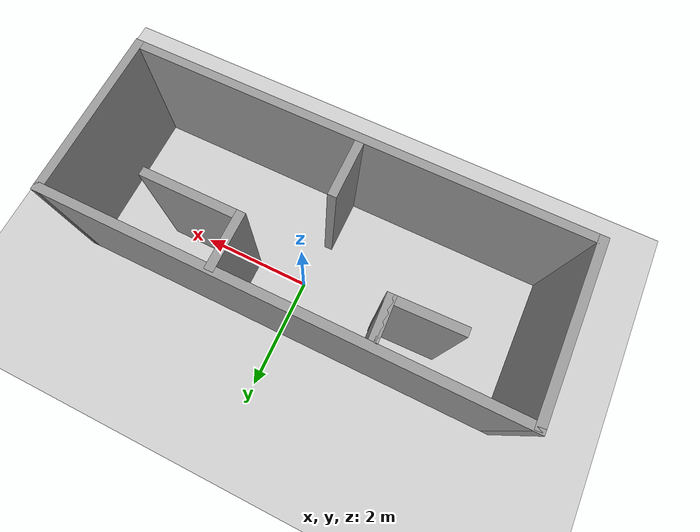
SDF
<sdf version="1.7">
 <world name="default">
  <light name="sun" type="directional">
   <pose>0 0 10 0 -0 0</pose>
   <diffuse>0.8 0.8 0.8 1</diffuse>
   <specular>0.2 0.2 0.2 1</specular>
   <attenuation>
    <range>1000</range>
    <constant>0.9</constant>
    <linear>0.01</linear>
    <quadratic>0.001</quadratic>
   </attenuation>
   <direction>-0.5 0.1 -0.9</direction>
   <spot><inner_angle>0</inner_angle><outer_angle>0</outer_angle><falloff>0</falloff></spot>
  </light>
  <model name="ground_plane">
   <static>1</static>
   <link name="link">
    <collision name="collision">
     <geometry><plane><normal>0 0 1</normal><size>100 100</size></plane></geometry>
     <surface>
      <contact><collide_bitmask>65535</collide_bitmask></contact>
      <friction><ode><mu>100</mu><mu2>50</mu2></ode></friction>
     </surface>
    </collision>
    <visual name="visual">
     <cast_shadows>0</cast_shadows>
     <geometry><plane><normal>0 0 1</normal><size>100 100</size></plane></geometry>
     <material>
      <script><uri>file://media/materials/scripts/gazebo.material</uri><name>Gazebo/Grey</name></script>
     </material>
    </visual>
   </link>
  </model>
  <gravity>0 0 -9.8</gravity>
  <magnetic_field>6e-06 2.3e-05 -4.2e-05</magnetic_field>
  <atmosphere type="adiabatic"/>
  <physics type="ode">
   <max_step_size>0.001</max_step_size>
   <real_time_factor>1</real_time_factor>
   <real_time_update_rate>1000</real_time_update_rate>
  </physics>
  <scene><ambient>0.4 0.4 0.4 1</ambient><background>0.7 0.7 0.7 1</background><shadows>1</shadows></scene>
  <spherical_coordinates>
   <surface_model>EARTH_WGS84</surface_model>
   <latitude_deg>0</latitude_deg>
   <longitude_deg>0</longitude_deg>
   <elevation>0</elevation>
   <heading_deg>0</heading_deg>
  </spherical_coordinates>
  <model name="room">
   <pose>-0.000234 0.009049 0 0 -0 0</pose>
   <link name="Wall_11">
    <collision name="Wall_11_Collision">
     <geometry><box><size>1 0.15 2.5</size></box></geometry>
     <pose>0 0 1.25 0 -0 0</pose>
    </collision>
    <visual name="Wall_11_Visual">
     <pose>0 0 1.25 0 -0 0</pose>
     <geometry><box><size>1 0.15 2.5</size></box></geometry>
     <material>
      <script><uri>file://media/materials/scripts/gazebo.material</uri><name>Gazebo/Grey</name></script>
      <ambient>1 1 1 1</ambient>
     </material>
     <meta><layer>0</layer></meta>
    </visual>
    <pose>0.995 0.4525 0 0 -0 -1.5708</pose>
   </link>
   <link name="Wall_12">
    <collision name="Wall_12_Collision">
     <geometry><box><size>1.75 0.15 2.5</size></box></geometry>
     <pose>0 0 1.25 0 -0 0</pose>
    </collision>
    <visual name="Wall_12_Visual">
     <pose>0 0 1.25 0 -0 0</pose>
     <geometry><box><size>1.75 0.15 2.5</size></box></geometry>
     <material>
      <script><uri>file://media/materials/scripts/gazebo.material</uri><name>Gazebo/Grey</name></script>
      <ambient>1 1 1 1</ambient>
     </material>
     <meta><layer>0</layer></meta>
    </visual>
    <pose>1.795 0.0275 0 0 -0 0</pose>
   </link>
   <link name="Wall_14">
    <collision name="Wall_14_Collision">
     <geometry><box><size>1 0.15 2.5</size></box></geometry>
     <pose>0 0 1.25 0 -0 0</pose>
    </collision>
    <visual name="Wall_14_Visual">
     <pose>0 0 1.25 0 -0 0</pose>
     <geometry><box><size>1 0.15 2.5</size></box></geometry>
     <material>
      <script><uri>file://media/materials/scripts/gazebo.material</uri><name>Gazebo/Grey</name></script>
      <ambient>1 1 1 1</ambient>
     </material>
     <meta><layer>0</layer></meta>
    </visual>
    <pose>-0.095 -1.3475 0 0 -0 1.5708</pose>
   </link>
   <link name="Wall_2">
    <collision name="Wall_2_Collision">
     <geometry><box><size>8 0.15 2.5</size></box></geometry>
     <pose>0 0 1.25 0 -0 0</pose>
    </collision>
    <visual name="Wall_2_Visual">
     <pose>0 0 1.25 0 -0 0</pose>
     <geometry><box><size>8 0.15 2.5</size></box></geometry>
     <material>
      <script><uri>file://media/materials/scripts/gazebo.material</uri><name>Gazebo/Grey</name></script>
      <ambient>1 1 1 1</ambient>
     </material>
     <meta><layer>0</layer></meta>
    </visual>
    <pose>-0 0.9275 0 0 -0 0</pose>
   </link>
   <link name="Wall_3">
    <collision name="Wall_3_Collision">
     <geometry><box><size>3 0.15 2.5</size></box></geometry>
     <pose>0 0 1.25 0 -0 0</pose>
    </collision>
    <visual name="Wall_3_Visual">
     <pose>0 0 1.25 0 -0 0</pose>
     <geometry><box><size>3 0.15 2.5</size></box></geometry>
     <material>
      <script><uri>file://media/materials/scripts/gazebo.material</uri><name>Gazebo/Grey</name></script>
      <ambient>1 1 1 1</ambient>
     </material>
     <meta><layer>0</layer></meta>
    </visual>
    <pose>3.925 -0.4975 0 0 -0 -1.5708</pose>
   </link>
   <link name="Wall_4">
    <collision name="Wall_4_Collision">
     <geometry><box><size>8 0.15 2.5</size></box></geometry>
     <pose>0 0 1.25 0 -0 0</pose>
    </collision>
    <visual name="Wall_4_Visual">
     <pose>0 0 1.25 0 -0 0</pose>
     <geometry><box><size>8 0.15 2.5</size></box></geometry>
     <material>
      <script><uri>file://media/materials/scripts/gazebo.material</uri><name>Gazebo/Grey</name></script>
      <ambient>1 1 1 1</ambient>
     </material>
     <meta><layer>0</layer></meta>
    </visual>
    <pose>-0 -1.9225 0 0 -0 3.14159</pose>
   </link>
   <link name="Wall_5">
    <collision name="Wall_5_Collision">
     <geometry><box><size>3 0.15 2.5</size></box></geometry>
     <pose>0 0 1.25 0 -0 0</pose>
    </collision>
    <visual name="Wall_5_Visual">
     <pose>0 0 1.25 0 -0 0</pose>
     <geometry><box><size>3 0.15 2.5</size></box></geometry>
     <material>
      <script><uri>file://media/materials/scripts/gazebo.material</uri><name>Gazebo/Grey</name></script>
      <ambient>1 1 1 1</ambient>
     </material>
     <meta><layer>0</layer></meta>
    </visual>
    <pose>-3.925 -0.4975 0 0 -0 1.5708</pose>
   </link>
   <link name="Wall_7">
    <collision name="Wall_7_Collision">
     <geometry><box><size>0.740339 0.15 2.5</size></box></geometry>
     <pose>0 0 1.25 0 -0 0</pose>
    </collision>
    <visual name="Wall_7_Visual">
     <pose>0 0 1.25 0 -0 0</pose>
     <geometry><box><size>0.740339 0.15 2.5</size></box></geometry>
     <material>
      <script><uri>file://media/materials/scripts/gazebo.material</uri><name>Gazebo/Grey</name></script>
      <ambient>1 1 1 1</ambient>
     </material>
     <meta><layer>0</layer></meta>
    </visual>
    <pose>-1.505 0.4925 0 0 -0 1.60468</pose>
   </link>
   <link name="Wall_8">
    <collision name="Wall_8_Collision">
     <geometry><box><size>0.730345 0.15 2.5</size></box></geometry>
     <pose>0 0 1.25 0 -0 0</pose>
    </collision>
    <visual name="Wall_8_Visual">
     <pose>0 0 1.25 0 -0 0</pose>
     <geometry><box><size>0.730345 0.15 2.5</size></box></geometry>
     <material>
      <script><uri>file://media/materials/scripts/gazebo.material</uri><name>Gazebo/Grey</name></script>
      <ambient>1 1 1 1</ambient>
     </material>
     <meta><layer>0</layer></meta>
    </visual>
    <pose>-1.505 0.4875 0 0 -0 -1.53633</pose>
   </link>
   <link name="Wall_9">
    <collision name="Wall_9_Collision">
     <geometry><box><size>1.25041 0.15 2.5</size></box></geometry>
     <pose>0 0 1.25 0 -0 0</pose>
    </collision>
    <visual name="Wall_9_Visual">
     <pose>0 0 1.25 0 -0 0</pose>
     <geometry><box><size>1.25041 0.15 2.5</size></box></geometry>
     <material>
      <script><uri>file://media/materials/scripts/gazebo.material</uri><name>Gazebo/Grey</name></script>
      <ambient>1 1 1 1</ambient>
     </material>
     <meta><layer>0</layer></meta>
    </visual>
    <pose>-2.035 0.1825 0 0 -0 -3.11433</pose>
   </link>
   <static>1</static>
  </model>
 </world>
</sdf>
